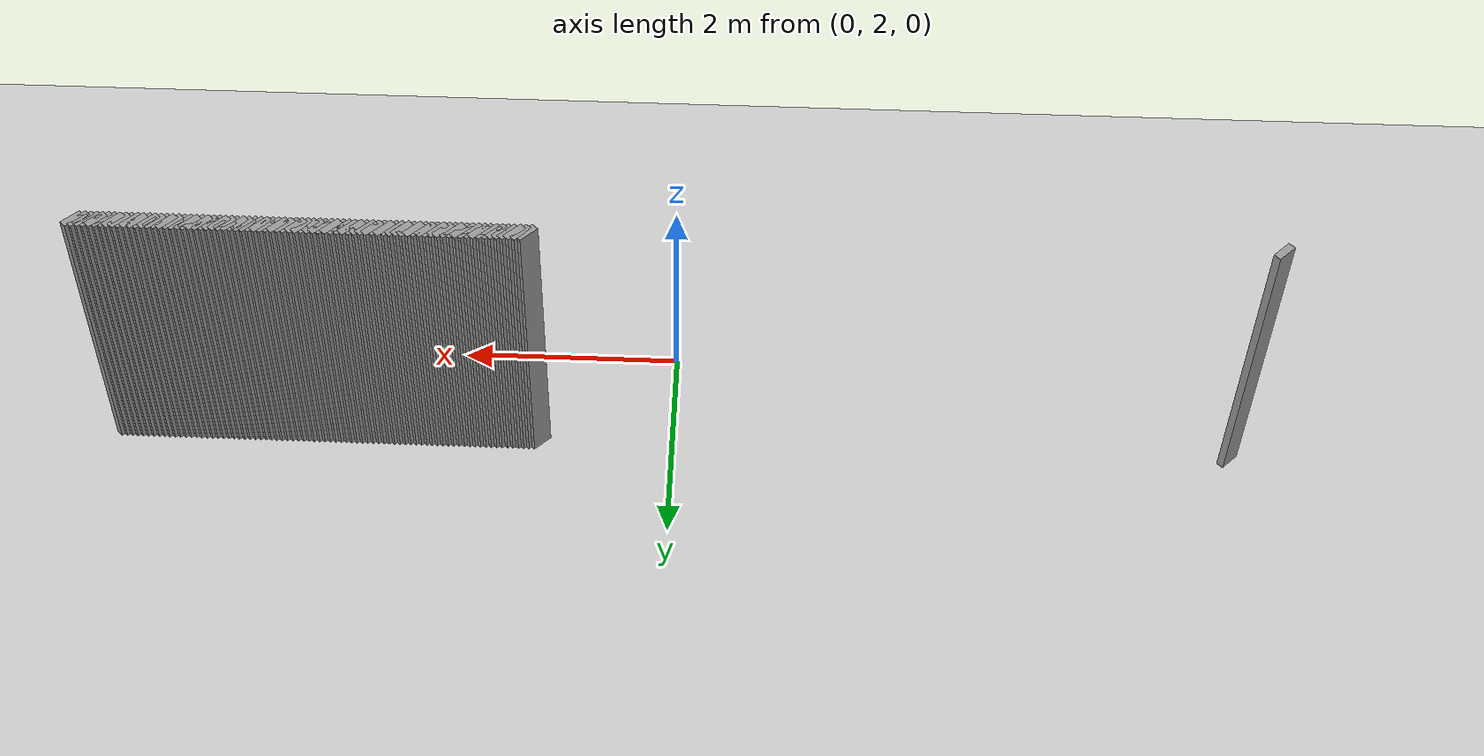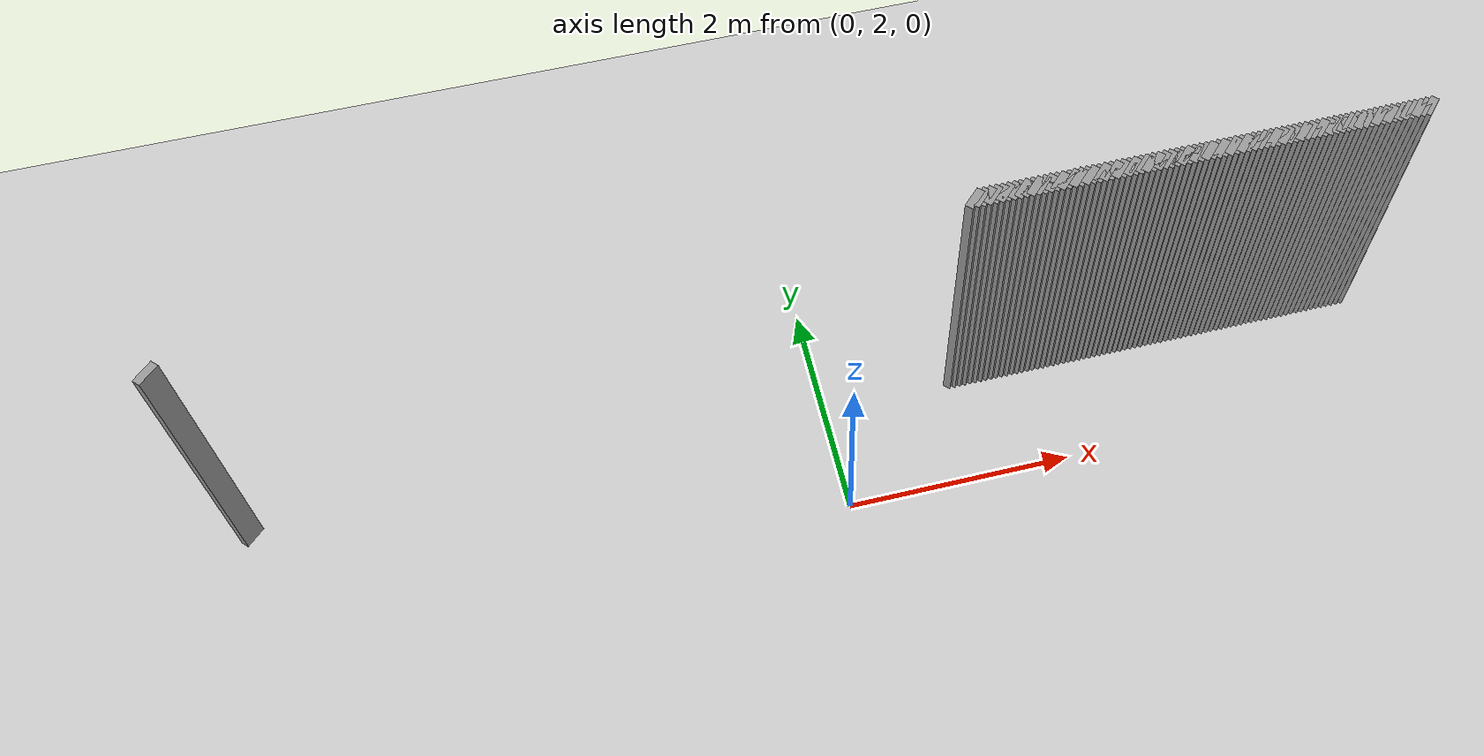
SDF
<sdf version="1.5">
 <world name="default">
  <include><uri>model://ground_plane</uri></include>
  <include><uri>model://sun</uri></include>
  <model name="grey_wall_393">
   <static>1</static>
   <link name="link">
    <pose>1.225 3.025  1.4 0 0 -0.785398163397</pose>
    <collision name="collision"><geometry><box><size>0.0707106781187 .2  2.8</size></box></geometry></collision>
    <visual name="visual">
     <cast_shadows>0</cast_shadows>
     <geometry><box><size>0.0707106781187 .2  2.8</size></box></geometry>
     <material>
      <script>
       <uri>model://grey_wall/materials/scripts</uri>
       <uri>model://grey_wall/materials/textures</uri>
       <name>vrc/grey_wall</name>
      </script>
     </material>
    </visual>
   </link>
  </model>
  <model name="grey_wall_394">
   <static>1</static>
   <link name="link">
    <pose>1.275 3.025  1.4 0 0 -0.785398163397</pose>
    <collision name="collision"><geometry><box><size>0.0707106781187 .2  2.8</size></box></geometry></collision>
    <visual name="visual">
     <cast_shadows>0</cast_shadows>
     <geometry><box><size>0.0707106781187 .2  2.8</size></box></geometry>
     <material>
      <script>
       <uri>model://grey_wall/materials/scripts</uri>
       <uri>model://grey_wall/materials/textures</uri>
       <name>vrc/grey_wall</name>
      </script>
     </material>
    </visual>
   </link>
  </model>
  <model name="grey_wall_395">
   <static>1</static>
   <link name="link">
    <pose>1.325 3.025  1.4 0 0 -0.785398163397</pose>
    <collision name="collision"><geometry><box><size>0.0707106781187 .2  2.8</size></box></geometry></collision>
    <visual name="visual">
     <cast_shadows>0</cast_shadows>
     <geometry><box><size>0.0707106781187 .2  2.8</size></box></geometry>
     <material>
      <script>
       <uri>model://grey_wall/materials/scripts</uri>
       <uri>model://grey_wall/materials/textures</uri>
       <name>vrc/grey_wall</name>
      </script>
     </material>
    </visual>
   </link>
  </model>
  <model name="grey_wall_396">
   <static>1</static>
   <link name="link">
    <pose>1.375 3.025  1.4 0 0 -0.785398163397</pose>
    <collision name="collision"><geometry><box><size>0.0707106781187 .2  2.8</size></box></geometry></collision>
    <visual name="visual">
     <cast_shadows>0</cast_shadows>
     <geometry><box><size>0.0707106781187 .2  2.8</size></box></geometry>
     <material>
      <script>
       <uri>model://grey_wall/materials/scripts</uri>
       <uri>model://grey_wall/materials/textures</uri>
       <name>vrc/grey_wall</name>
      </script>
     </material>
    </visual>
   </link>
  </model>
  <model name="grey_wall_397">
   <static>1</static>
   <link name="link">
    <pose>1.425 3.025  1.4 0 0 -0.785398163397</pose>
    <collision name="collision"><geometry><box><size>0.0707106781187 .2  2.8</size></box></geometry></collision>
    <visual name="visual">
     <cast_shadows>0</cast_shadows>
     <geometry><box><size>0.0707106781187 .2  2.8</size></box></geometry>
     <material>
      <script>
       <uri>model://grey_wall/materials/scripts</uri>
       <uri>model://grey_wall/materials/textures</uri>
       <name>vrc/grey_wall</name>
      </script>
     </material>
    </visual>
   </link>
  </model>
  <model name="grey_wall_398">
   <static>1</static>
   <link name="link">
    <pose>1.475 3.025  1.4 0 0 -0.785398163397</pose>
    <collision name="collision"><geometry><box><size>0.0707106781187 .2  2.8</size></box></geometry></collision>
    <visual name="visual">
     <cast_shadows>0</cast_shadows>
     <geometry><box><size>0.0707106781187 .2  2.8</size></box></geometry>
     <material>
      <script>
       <uri>model://grey_wall/materials/scripts</uri>
       <uri>model://grey_wall/materials/textures</uri>
       <name>vrc/grey_wall</name>
      </script>
     </material>
    </visual>
   </link>
  </model>
  <model name="grey_wall_399">
   <static>1</static>
   <link name="link">
    <pose>1.525 3.025  1.4 0 0 -0.785398163397</pose>
    <collision name="collision"><geometry><box><size>0.0707106781187 .2  2.8</size></box></geometry></collision>
    <visual name="visual">
     <cast_shadows>0</cast_shadows>
     <geometry><box><size>0.0707106781187 .2  2.8</size></box></geometry>
     <material>
      <script>
       <uri>model://grey_wall/materials/scripts</uri>
       <uri>model://grey_wall/materials/textures</uri>
       <name>vrc/grey_wall</name>
      </script>
     </material>
    </visual>
   </link>
  </model>
  <model name="grey_wall_400">
   <static>1</static>
   <link name="link">
    <pose>1.575 3.025  1.4 0 0 -0.785398163397</pose>
    <collision name="collision"><geometry><box><size>0.0707106781187 .2  2.8</size></box></geometry></collision>
    <visual name="visual">
     <cast_shadows>0</cast_shadows>
     <geometry><box><size>0.0707106781187 .2  2.8</size></box></geometry>
     <material>
      <script>
       <uri>model://grey_wall/materials/scripts</uri>
       <uri>model://grey_wall/materials/textures</uri>
       <name>vrc/grey_wall</name>
      </script>
     </material>
    </visual>
   </link>
  </model>
  <model name="grey_wall_401">
   <static>1</static>
   <link name="link">
    <pose>1.625 3.025  1.4 0 0 -0.785398163397</pose>
    <collision name="collision"><geometry><box><size>0.0707106781187 .2  2.8</size></box></geometry></collision>
    <visual name="visual">
     <cast_shadows>0</cast_shadows>
     <geometry><box><size>0.0707106781187 .2  2.8</size></box></geometry>
     <material>
      <script>
       <uri>model://grey_wall/materials/scripts</uri>
       <uri>model://grey_wall/materials/textures</uri>
       <name>vrc/grey_wall</name>
      </script>
     </material>
    </visual>
   </link>
  </model>
  <model name="grey_wall_402">
   <static>1</static>
   <link name="link">
    <pose>1.675 3.025  1.4 0 0 -0.785398163397</pose>
    <collision name="collision"><geometry><box><size>0.0707106781187 .2  2.8</size></box></geometry></collision>
    <visual name="visual">
     <cast_shadows>0</cast_shadows>
     <geometry><box><size>0.0707106781187 .2  2.8</size></box></geometry>
     <material>
      <script>
       <uri>model://grey_wall/materials/scripts</uri>
       <uri>model://grey_wall/materials/textures</uri>
       <name>vrc/grey_wall</name>
      </script>
     </material>
    </visual>
   </link>
  </model>
  <model name="grey_wall_403">
   <static>1</static>
   <link name="link">
    <pose>1.725 3.025  1.4 0 0 -0.785398163397</pose>
    <collision name="collision"><geometry><box><size>0.0707106781187 .2  2.8</size></box></geometry></collision>
    <visual name="visual">
     <cast_shadows>0</cast_shadows>
     <geometry><box><size>0.0707106781187 .2  2.8</size></box></geometry>
     <material>
      <script>
       <uri>model://grey_wall/materials/scripts</uri>
       <uri>model://grey_wall/materials/textures</uri>
       <name>vrc/grey_wall</name>
      </script>
     </material>
    </visual>
   </link>
  </model>
  <model name="grey_wall_404">
   <static>1</static>
   <link name="link">
    <pose>1.775 3.025  1.4 0 0 -0.785398163397</pose>
    <collision name="collision"><geometry><box><size>0.0707106781187 .2  2.8</size></box></geometry></collision>
    <visual name="visual">
     <cast_shadows>0</cast_shadows>
     <geometry><box><size>0.0707106781187 .2  2.8</size></box></geometry>
     <material>
      <script>
       <uri>model://grey_wall/materials/scripts</uri>
       <uri>model://grey_wall/materials/textures</uri>
       <name>vrc/grey_wall</name>
      </script>
     </material>
    </visual>
   </link>
  </model>
  <model name="grey_wall_405">
   <static>1</static>
   <link name="link">
    <pose>1.825 3.025  1.4 0 0 -0.785398163397</pose>
    <collision name="collision"><geometry><box><size>0.0707106781187 .2  2.8</size></box></geometry></collision>
    <visual name="visual">
     <cast_shadows>0</cast_shadows>
     <geometry><box><size>0.0707106781187 .2  2.8</size></box></geometry>
     <material>
      <script>
       <uri>model://grey_wall/materials/scripts</uri>
       <uri>model://grey_wall/materials/textures</uri>
       <name>vrc/grey_wall</name>
      </script>
     </material>
    </visual>
   </link>
  </model>
  <model name="grey_wall_406">
   <static>1</static>
   <link name="link">
    <pose>1.875 3.025  1.4 0 0 -0.785398163397</pose>
    <collision name="collision"><geometry><box><size>0.0707106781187 .2  2.8</size></box></geometry></collision>
    <visual name="visual">
     <cast_shadows>0</cast_shadows>
     <geometry><box><size>0.0707106781187 .2  2.8</size></box></geometry>
     <material>
      <script>
       <uri>model://grey_wall/materials/scripts</uri>
       <uri>model://grey_wall/materials/textures</uri>
       <name>vrc/grey_wall</name>
      </script>
     </material>
    </visual>
   </link>
  </model>
  <model name="grey_wall_407">
   <static>1</static>
   <link name="link">
    <pose>1.925 3.025  1.4 0 0 -0.785398163397</pose>
    <collision name="collision"><geometry><box><size>0.0707106781187 .2  2.8</size></box></geometry></collision>
    <visual name="visual">
     <cast_shadows>0</cast_shadows>
     <geometry><box><size>0.0707106781187 .2  2.8</size></box></geometry>
     <material>
      <script>
       <uri>model://grey_wall/materials/scripts</uri>
       <uri>model://grey_wall/materials/textures</uri>
       <name>vrc/grey_wall</name>
      </script>
     </material>
    </visual>
   </link>
  </model>
  <model name="grey_wall_408">
   <static>1</static>
   <link name="link">
    <pose>1.975 3.025  1.4 0 0 -0.785398163397</pose>
    <collision name="collision"><geometry><box><size>0.0707106781187 .2  2.8</size></box></geometry></collision>
    <visual name="visual">
     <cast_shadows>0</cast_shadows>
     <geometry><box><size>0.0707106781187 .2  2.8</size></box></geometry>
     <material>
      <script>
       <uri>model://grey_wall/materials/scripts</uri>
       <uri>model://grey_wall/materials/textures</uri>
       <name>vrc/grey_wall</name>
      </script>
     </material>
    </visual>
   </link>
  </model>
  <model name="grey_wall_409">
   <static>1</static>
   <link name="link">
    <pose>2.025 3.025  1.4 0 0 -0.785398163397</pose>
    <collision name="collision"><geometry><box><size>0.0707106781187 .2  2.8</size></box></geometry></collision>
    <visual name="visual">
     <cast_shadows>0</cast_shadows>
     <geometry><box><size>0.0707106781187 .2  2.8</size></box></geometry>
     <material>
      <script>
       <uri>model://grey_wall/materials/scripts</uri>
       <uri>model://grey_wall/materials/textures</uri>
       <name>vrc/grey_wall</name>
      </script>
     </material>
    </visual>
   </link>
  </model>
  <model name="grey_wall_410">
   <static>1</static>
   <link name="link">
    <pose>2.075 3.025  1.4 0 0 -0.785398163397</pose>
    <collision name="collision"><geometry><box><size>0.0707106781187 .2  2.8</size></box></geometry></collision>
    <visual name="visual">
     <cast_shadows>0</cast_shadows>
     <geometry><box><size>0.0707106781187 .2  2.8</size></box></geometry>
     <material>
      <script>
       <uri>model://grey_wall/materials/scripts</uri>
       <uri>model://grey_wall/materials/textures</uri>
       <name>vrc/grey_wall</name>
      </script>
     </material>
    </visual>
   </link>
  </model>
  <model name="grey_wall_411">
   <static>1</static>
   <link name="link">
    <pose>2.125 3.025  1.4 0 0 -0.785398163397</pose>
    <collision name="collision"><geometry><box><size>0.0707106781187 .2  2.8</size></box></geometry></collision>
    <visual name="visual">
     <cast_shadows>0</cast_shadows>
     <geometry><box><size>0.0707106781187 .2  2.8</size></box></geometry>
     <material>
      <script>
       <uri>model://grey_wall/materials/scripts</uri>
       <uri>model://grey_wall/materials/textures</uri>
       <name>vrc/grey_wall</name>
      </script>
     </material>
    </visual>
   </link>
  </model>
  <model name="grey_wall_412">
   <static>1</static>
   <link name="link">
    <pose>2.175 3.025  1.4 0 0 -0.785398163397</pose>
    <collision name="collision"><geometry><box><size>0.0707106781187 .2  2.8</size></box></geometry></collision>
    <visual name="visual">
     <cast_shadows>0</cast_shadows>
     <geometry><box><size>0.0707106781187 .2  2.8</size></box></geometry>
     <material>
      <script>
       <uri>model://grey_wall/materials/scripts</uri>
       <uri>model://grey_wall/materials/textures</uri>
       <name>vrc/grey_wall</name>
      </script>
     </material>
    </visual>
   </link>
  </model>
  <model name="grey_wall_413">
   <static>1</static>
   <link name="link">
    <pose>2.225 3.025  1.4 0 0 -0.785398163397</pose>
    <collision name="collision"><geometry><box><size>0.0707106781187 .2  2.8</size></box></geometry></collision>
    <visual name="visual">
     <cast_shadows>0</cast_shadows>
     <geometry><box><size>0.0707106781187 .2  2.8</size></box></geometry>
     <material>
      <script>
       <uri>model://grey_wall/materials/scripts</uri>
       <uri>model://grey_wall/materials/textures</uri>
       <name>vrc/grey_wall</name>
      </script>
     </material>
    </visual>
   </link>
  </model>
  <model name="grey_wall_414">
   <static>1</static>
   <link name="link">
    <pose>2.275 3.025  1.4 0 0 -0.785398163397</pose>
    <collision name="collision"><geometry><box><size>0.0707106781187 .2  2.8</size></box></geometry></collision>
    <visual name="visual">
     <cast_shadows>0</cast_shadows>
     <geometry><box><size>0.0707106781187 .2  2.8</size></box></geometry>
     <material>
      <script>
       <uri>model://grey_wall/materials/scripts</uri>
       <uri>model://grey_wall/materials/textures</uri>
       <name>vrc/grey_wall</name>
      </script>
     </material>
    </visual>
   </link>
  </model>
  <model name="grey_wall_415">
   <static>1</static>
   <link name="link">
    <pose>2.325 3.025  1.4 0 0 -0.785398163397</pose>
    <collision name="collision"><geometry><box><size>0.0707106781187 .2  2.8</size></box></geometry></collision>
    <visual name="visual">
     <cast_shadows>0</cast_shadows>
     <geometry><box><size>0.0707106781187 .2  2.8</size></box></geometry>
     <material>
      <script>
       <uri>model://grey_wall/materials/scripts</uri>
       <uri>model://grey_wall/materials/textures</uri>
       <name>vrc/grey_wall</name>
      </script>
     </material>
    </visual>
   </link>
  </model>
  <model name="grey_wall_416">
   <static>1</static>
   <link name="link">
    <pose>2.375 3.025  1.4 0 0 -0.785398163397</pose>
    <collision name="collision"><geometry><box><size>0.0707106781187 .2  2.8</size></box></geometry></collision>
    <visual name="visual">
     <cast_shadows>0</cast_shadows>
     <geometry><box><size>0.0707106781187 .2  2.8</size></box></geometry>
     <material>
      <script>
       <uri>model://grey_wall/materials/scripts</uri>
       <uri>model://grey_wall/materials/textures</uri>
       <name>vrc/grey_wall</name>
      </script>
     </material>
    </visual>
   </link>
  </model>
  <model name="grey_wall_417">
   <static>1</static>
   <link name="link">
    <pose>2.425 3.025  1.4 0 0 -0.785398163397</pose>
    <collision name="collision"><geometry><box><size>0.0707106781187 .2  2.8</size></box></geometry></collision>
    <visual name="visual">
     <cast_shadows>0</cast_shadows>
     <geometry><box><size>0.0707106781187 .2  2.8</size></box></geometry>
     <material>
      <script>
       <uri>model://grey_wall/materials/scripts</uri>
       <uri>model://grey_wall/materials/textures</uri>
       <name>vrc/grey_wall</name>
      </script>
     </material>
    </visual>
   </link>
  </model>
  <model name="grey_wall_418">
   <static>1</static>
   <link name="link">
    <pose>2.475 3.025  1.4 0 0 -0.785398163397</pose>
    <collision name="collision"><geometry><box><size>0.0707106781187 .2  2.8</size></box></geometry></collision>
    <visual name="visual">
     <cast_shadows>0</cast_shadows>
     <geometry><box><size>0.0707106781187 .2  2.8</size></box></geometry>
     <material>
      <script>
       <uri>model://grey_wall/materials/scripts</uri>
       <uri>model://grey_wall/materials/textures</uri>
       <name>vrc/grey_wall</name>
      </script>
     </material>
    </visual>
   </link>
  </model>
  <model name="grey_wall_419">
   <static>1</static>
   <link name="link">
    <pose>2.525 3.025  1.4 0 0 -0.785398163397</pose>
    <collision name="collision"><geometry><box><size>0.0707106781187 .2  2.8</size></box></geometry></collision>
    <visual name="visual">
     <cast_shadows>0</cast_shadows>
     <geometry><box><size>0.0707106781187 .2  2.8</size></box></geometry>
     <material>
      <script>
       <uri>model://grey_wall/materials/scripts</uri>
       <uri>model://grey_wall/materials/textures</uri>
       <name>vrc/grey_wall</name>
      </script>
     </material>
    </visual>
   </link>
  </model>
  <model name="grey_wall_420">
   <static>1</static>
   <link name="link">
    <pose>2.575 3.025  1.4 0 0 -0.785398163397</pose>
    <collision name="collision"><geometry><box><size>0.0707106781187 .2  2.8</size></box></geometry></collision>
    <visual name="visual">
     <cast_shadows>0</cast_shadows>
     <geometry><box><size>0.0707106781187 .2  2.8</size></box></geometry>
     <material>
      <script>
       <uri>model://grey_wall/materials/scripts</uri>
       <uri>model://grey_wall/materials/textures</uri>
       <name>vrc/grey_wall</name>
      </script>
     </material>
    </visual>
   </link>
  </model>
  <model name="grey_wall_421">
   <static>1</static>
   <link name="link">
    <pose>2.625 3.025  1.4 0 0 -0.785398163397</pose>
    <collision name="collision"><geometry><box><size>0.0707106781187 .2  2.8</size></box></geometry></collision>
    <visual name="visual">
     <cast_shadows>0</cast_shadows>
     <geometry><box><size>0.0707106781187 .2  2.8</size></box></geometry>
     <material>
      <script>
       <uri>model://grey_wall/materials/scripts</uri>
       <uri>model://grey_wall/materials/textures</uri>
       <name>vrc/grey_wall</name>
      </script>
     </material>
    </visual>
   </link>
  </model>
  <model name="grey_wall_422">
   <static>1</static>
   <link name="link">
    <pose>2.675 3.025  1.4 0 0 -0.785398163397</pose>
    <collision name="collision"><geometry><box><size>0.0707106781187 .2  2.8</size></box></geometry></collision>
    <visual name="visual">
     <cast_shadows>0</cast_shadows>
     <geometry><box><size>0.0707106781187 .2  2.8</size></box></geometry>
     <material>
      <script>
       <uri>model://grey_wall/materials/scripts</uri>
       <uri>model://grey_wall/materials/textures</uri>
       <name>vrc/grey_wall</name>
      </script>
     </material>
    </visual>
   </link>
  </model>
  <model name="grey_wall_423">
   <static>1</static>
   <link name="link">
    <pose>2.725 3.025  1.4 0 0 -0.785398163397</pose>
    <collision name="collision"><geometry><box><size>0.0707106781187 .2  2.8</size></box></geometry></collision>
    <visual name="visual">
     <cast_shadows>0</cast_shadows>
     <geometry><box><size>0.0707106781187 .2  2.8</size></box></geometry>
     <material>
      <script>
       <uri>model://grey_wall/materials/scripts</uri>
       <uri>model://grey_wall/materials/textures</uri>
       <name>vrc/grey_wall</name>
      </script>
     </material>
    </visual>
   </link>
  </model>
  <model name="grey_wall_424">
   <static>1</static>
   <link name="link">
    <pose>2.775 3.025  1.4 0 0 -0.785398163397</pose>
    <collision name="collision"><geometry><box><size>0.0707106781187 .2  2.8</size></box></geometry></collision>
    <visual name="visual">
     <cast_shadows>0</cast_shadows>
     <geometry><box><size>0.0707106781187 .2  2.8</size></box></geometry>
     <material>
      <script>
       <uri>model://grey_wall/materials/scripts</uri>
       <uri>model://grey_wall/materials/textures</uri>
       <name>vrc/grey_wall</name>
      </script>
     </material>
    </visual>
   </link>
  </model>
  <model name="grey_wall_425">
   <static>1</static>
   <link name="link">
    <pose>2.825 3.025  1.4 0 0 -0.785398163397</pose>
    <collision name="collision"><geometry><box><size>0.0707106781187 .2  2.8</size></box></geometry></collision>
    <visual name="visual">
     <cast_shadows>0</cast_shadows>
     <geometry><box><size>0.0707106781187 .2  2.8</size></box></geometry>
     <material>
      <script>
       <uri>model://grey_wall/materials/scripts</uri>
       <uri>model://grey_wall/materials/textures</uri>
       <name>vrc/grey_wall</name>
      </script>
     </material>
    </visual>
   </link>
  </model>
  <model name="grey_wall_426">
   <static>1</static>
   <link name="link">
    <pose>2.875 3.025  1.4 0 0 -0.785398163397</pose>
    <collision name="collision"><geometry><box><size>0.0707106781187 .2  2.8</size></box></geometry></collision>
    <visual name="visual">
     <cast_shadows>0</cast_shadows>
     <geometry><box><size>0.0707106781187 .2  2.8</size></box></geometry>
     <material>
      <script>
       <uri>model://grey_wall/materials/scripts</uri>
       <uri>model://grey_wall/materials/textures</uri>
       <name>vrc/grey_wall</name>
      </script>
     </material>
    </visual>
   </link>
  </model>
  <model name="grey_wall_427">
   <static>1</static>
   <link name="link">
    <pose>2.925 3.025  1.4 0 0 -0.785398163397</pose>
    <collision name="collision"><geometry><box><size>0.0707106781187 .2  2.8</size></box></geometry></collision>
    <visual name="visual">
     <cast_shadows>0</cast_shadows>
     <geometry><box><size>0.0707106781187 .2  2.8</size></box></geometry>
     <material>
      <script>
       <uri>model://grey_wall/materials/scripts</uri>
       <uri>model://grey_wall/materials/textures</uri>
       <name>vrc/grey_wall</name>
      </script>
     </material>
    </visual>
   </link>
  </model>
  <model name="grey_wall_428">
   <static>1</static>
   <link name="link">
    <pose>2.975 3.025  1.4 0 0 -0.785398163397</pose>
    <collision name="collision"><geometry><box><size>0.0707106781187 .2  2.8</size></box></geometry></collision>
    <visual name="visual">
     <cast_shadows>0</cast_shadows>
     <geometry><box><size>0.0707106781187 .2  2.8</size></box></geometry>
     <material>
      <script>
       <uri>model://grey_wall/materials/scripts</uri>
       <uri>model://grey_wall/materials/textures</uri>
       <name>vrc/grey_wall</name>
      </script>
     </material>
    </visual>
   </link>
  </model>
  <model name="grey_wall_429">
   <static>1</static>
   <link name="link">
    <pose>3.025 3.025  1.4 0 0 -0.785398163397</pose>
    <collision name="collision"><geometry><box><size>0.0707106781187 .2  2.8</size></box></geometry></collision>
    <visual name="visual">
     <cast_shadows>0</cast_shadows>
     <geometry><box><size>0.0707106781187 .2  2.8</size></box></geometry>
     <material>
      <script>
       <uri>model://grey_wall/materials/scripts</uri>
       <uri>model://grey_wall/materials/textures</uri>
       <name>vrc/grey_wall</name>
      </script>
     </material>
    </visual>
   </link>
  </model>
  <model name="grey_wall_430">
   <static>1</static>
   <link name="link">
    <pose>3.075 3.025  1.4 0 0 -0.785398163397</pose>
    <collision name="collision"><geometry><box><size>0.0707106781187 .2  2.8</size></box></geometry></collision>
    <visual name="visual">
     <cast_shadows>0</cast_shadows>
     <geometry><box><size>0.0707106781187 .2  2.8</size></box></geometry>
     <material>
      <script>
       <uri>model://grey_wall/materials/scripts</uri>
       <uri>model://grey_wall/materials/textures</uri>
       <name>vrc/grey_wall</name>
      </script>
     </material>
    </visual>
   </link>
  </model>
  <model name="grey_wall_431">
   <static>1</static>
   <link name="link">
    <pose>3.125 3.025  1.4 0 0 -0.785398163397</pose>
    <collision name="collision"><geometry><box><size>0.0707106781187 .2  2.8</size></box></geometry></collision>
    <visual name="visual">
     <cast_shadows>0</cast_shadows>
     <geometry><box><size>0.0707106781187 .2  2.8</size></box></geometry>
     <material>
      <script>
       <uri>model://grey_wall/materials/scripts</uri>
       <uri>model://grey_wall/materials/textures</uri>
       <name>vrc/grey_wall</name>
      </script>
     </material>
    </visual>
   </link>
  </model>
  <model name="grey_wall_432">
   <static>1</static>
   <link name="link">
    <pose>3.175 3.025  1.4 0 0 -0.785398163397</pose>
    <collision name="collision"><geometry><box><size>0.0707106781187 .2  2.8</size></box></geometry></collision>
    <visual name="visual">
     <cast_shadows>0</cast_shadows>
     <geometry><box><size>0.0707106781187 .2  2.8</size></box></geometry>
     <material>
      <script>
       <uri>model://grey_wall/materials/scripts</uri>
       <uri>model://grey_wall/materials/textures</uri>
       <name>vrc/grey_wall</name>
      </script>
     </material>
    </visual>
   </link>
  </model>
  <model name="grey_wall_433">
   <static>1</static>
   <link name="link">
    <pose>3.225 3.025  1.4 0 0 -0.785398163397</pose>
    <collision name="collision"><geometry><box><size>0.0707106781187 .2  2.8</size></box></geometry></collision>
    <visual name="visual">
     <cast_shadows>0</cast_shadows>
     <geometry><box><size>0.0707106781187 .2  2.8</size></box></geometry>
     <material>
      <script>
       <uri>model://grey_wall/materials/scripts</uri>
       <uri>model://grey_wall/materials/textures</uri>
       <name>vrc/grey_wall</name>
      </script>
     </material>
    </visual>
   </link>
  </model>
  <model name="grey_wall_434">
   <static>1</static>
   <link name="link">
    <pose>3.275 3.025  1.4 0 0 -0.785398163397</pose>
    <collision name="collision"><geometry><box><size>0.0707106781187 .2  2.8</size></box></geometry></collision>
    <visual name="visual">
     <cast_shadows>0</cast_shadows>
     <geometry><box><size>0.0707106781187 .2  2.8</size></box></geometry>
     <material>
      <script>
       <uri>model://grey_wall/materials/scripts</uri>
       <uri>model://grey_wall/materials/textures</uri>
       <name>vrc/grey_wall</name>
      </script>
     </material>
    </visual>
   </link>
  </model>
  <model name="grey_wall_435">
   <static>1</static>
   <link name="link">
    <pose>3.325 3.025  1.4 0 0 -0.785398163397</pose>
    <collision name="collision"><geometry><box><size>0.0707106781187 .2  2.8</size></box></geometry></collision>
    <visual name="visual">
     <cast_shadows>0</cast_shadows>
     <geometry><box><size>0.0707106781187 .2  2.8</size></box></geometry>
     <material>
      <script>
       <uri>model://grey_wall/materials/scripts</uri>
       <uri>model://grey_wall/materials/textures</uri>
       <name>vrc/grey_wall</name>
      </script>
     </material>
    </visual>
   </link>
  </model>
  <model name="grey_wall_436">
   <static>1</static>
   <link name="link">
    <pose>3.375 3.025  1.4 0 0 -0.785398163397</pose>
    <collision name="collision"><geometry><box><size>0.0707106781187 .2  2.8</size></box></geometry></collision>
    <visual name="visual">
     <cast_shadows>0</cast_shadows>
     <geometry><box><size>0.0707106781187 .2  2.8</size></box></geometry>
     <material>
      <script>
       <uri>model://grey_wall/materials/scripts</uri>
       <uri>model://grey_wall/materials/textures</uri>
       <name>vrc/grey_wall</name>
      </script>
     </material>
    </visual>
   </link>
  </model>
  <model name="grey_wall_437">
   <static>1</static>
   <link name="link">
    <pose>3.425 3.025  1.4 0 0 -0.785398163397</pose>
    <collision name="collision"><geometry><box><size>0.0707106781187 .2  2.8</size></box></geometry></collision>
    <visual name="visual">
     <cast_shadows>0</cast_shadows>
     <geometry><box><size>0.0707106781187 .2  2.8</size></box></geometry>
     <material>
      <script>
       <uri>model://grey_wall/materials/scripts</uri>
       <uri>model://grey_wall/materials/textures</uri>
       <name>vrc/grey_wall</name>
      </script>
     </material>
    </visual>
   </link>
  </model>
  <model name="grey_wall_438">
   <static>1</static>
   <link name="link">
    <pose>3.475 3.025  1.4 0 0 -0.785398163397</pose>
    <collision name="collision"><geometry><box><size>0.0707106781187 .2  2.8</size></box></geometry></collision>
    <visual name="visual">
     <cast_shadows>0</cast_shadows>
     <geometry><box><size>0.0707106781187 .2  2.8</size></box></geometry>
     <material>
      <script>
       <uri>model://grey_wall/materials/scripts</uri>
       <uri>model://grey_wall/materials/textures</uri>
       <name>vrc/grey_wall</name>
      </script>
     </material>
    </visual>
   </link>
  </model>
  <model name="grey_wall_439">
   <static>1</static>
   <link name="link">
    <pose>3.525 3.025  1.4 0 0 -0.785398163397</pose>
    <collision name="collision"><geometry><box><size>0.0707106781187 .2  2.8</size></box></geometry></collision>
    <visual name="visual">
     <cast_shadows>0</cast_shadows>
     <geometry><box><size>0.0707106781187 .2  2.8</size></box></geometry>
     <material>
      <script>
       <uri>model://grey_wall/materials/scripts</uri>
       <uri>model://grey_wall/materials/textures</uri>
       <name>vrc/grey_wall</name>
      </script>
     </material>
    </visual>
   </link>
  </model>
  <model name="grey_wall_440">
   <static>1</static>
   <link name="link">
    <pose>3.575 3.025  1.4 0 0 -0.785398163397</pose>
    <collision name="collision"><geometry><box><size>0.0707106781187 .2  2.8</size></box></geometry></collision>
    <visual name="visual">
     <cast_shadows>0</cast_shadows>
     <geometry><box><size>0.0707106781187 .2  2.8</size></box></geometry>
     <material>
      <script>
       <uri>model://grey_wall/materials/scripts</uri>
       <uri>model://grey_wall/materials/textures</uri>
       <name>vrc/grey_wall</name>
      </script>
     </material>
    </visual>
   </link>
  </model>
  <model name="grey_wall_441">
   <static>1</static>
   <link name="link">
    <pose>3.625 3.025  1.4 0 0 -0.785398163397</pose>
    <collision name="collision"><geometry><box><size>0.0707106781187 .2  2.8</size></box></geometry></collision>
    <visual name="visual">
     <cast_shadows>0</cast_shadows>
     <geometry><box><size>0.0707106781187 .2  2.8</size></box></geometry>
     <material>
      <script>
       <uri>model://grey_wall/materials/scripts</uri>
       <uri>model://grey_wall/materials/textures</uri>
       <name>vrc/grey_wall</name>
      </script>
     </material>
    </visual>
   </link>
  </model>
  <model name="grey_wall_442">
   <static>1</static>
   <link name="link">
    <pose>3.675 3.025  1.4 0 0 -0.785398163397</pose>
    <collision name="collision"><geometry><box><size>0.0707106781187 .2  2.8</size></box></geometry></collision>
    <visual name="visual">
     <cast_shadows>0</cast_shadows>
     <geometry><box><size>0.0707106781187 .2  2.8</size></box></geometry>
     <material>
      <script>
       <uri>model://grey_wall/materials/scripts</uri>
       <uri>model://grey_wall/materials/textures</uri>
       <name>vrc/grey_wall</name>
      </script>
     </material>
    </visual>
   </link>
  </model>
  <model name="grey_wall_443">
   <static>1</static>
   <link name="link">
    <pose>3.725 3.025  1.4 0 0 -0.785398163397</pose>
    <collision name="collision"><geometry><box><size>0.0707106781187 .2  2.8</size></box></geometry></collision>
    <visual name="visual">
     <cast_shadows>0</cast_shadows>
     <geometry><box><size>0.0707106781187 .2  2.8</size></box></geometry>
     <material>
      <script>
       <uri>model://grey_wall/materials/scripts</uri>
       <uri>model://grey_wall/materials/textures</uri>
       <name>vrc/grey_wall</name>
      </script>
     </material>
    </visual>
   </link>
  </model>
  <model name="grey_wall_444">
   <static>1</static>
   <link name="link">
    <pose>3.775 3.025  1.4 0 0 -0.785398163397</pose>
    <collision name="collision"><geometry><box><size>0.0707106781187 .2  2.8</size></box></geometry></collision>
    <visual name="visual">
     <cast_shadows>0</cast_shadows>
     <geometry><box><size>0.0707106781187 .2  2.8</size></box></geometry>
     <material>
      <script>
       <uri>model://grey_wall/materials/scripts</uri>
       <uri>model://grey_wall/materials/textures</uri>
       <name>vrc/grey_wall</name>
      </script>
     </material>
    </visual>
   </link>
  </model>
  <model name="grey_wall_445">
   <static>1</static>
   <link name="link">
    <pose>3.825 3.025  1.4 0 0 -0.785398163397</pose>
    <collision name="collision"><geometry><box><size>0.0707106781187 .2  2.8</size></box></geometry></collision>
    <visual name="visual">
     <cast_shadows>0</cast_shadows>
     <geometry><box><size>0.0707106781187 .2  2.8</size></box></geometry>
     <material>
      <script>
       <uri>model://grey_wall/materials/scripts</uri>
       <uri>model://grey_wall/materials/textures</uri>
       <name>vrc/grey_wall</name>
      </script>
     </material>
    </visual>
   </link>
  </model>
  <model name="grey_wall_446">
   <static>1</static>
   <link name="link">
    <pose>3.875 3.025  1.4 0 0 -0.785398163397</pose>
    <collision name="collision"><geometry><box><size>0.0707106781187 .2  2.8</size></box></geometry></collision>
    <visual name="visual">
     <cast_shadows>0</cast_shadows>
     <geometry><box><size>0.0707106781187 .2  2.8</size></box></geometry>
     <material>
      <script>
       <uri>model://grey_wall/materials/scripts</uri>
       <uri>model://grey_wall/materials/textures</uri>
       <name>vrc/grey_wall</name>
      </script>
     </material>
    </visual>
   </link>
  </model>
  <model name="grey_wall_447">
   <static>1</static>
   <link name="link">
    <pose>3.925 3.025  1.4 0 0 -0.785398163397</pose>
    <collision name="collision"><geometry><box><size>0.0707106781187 .2  2.8</size></box></geometry></collision>
    <visual name="visual">
     <cast_shadows>0</cast_shadows>
     <geometry><box><size>0.0707106781187 .2  2.8</size></box></geometry>
     <material>
      <script>
       <uri>model://grey_wall/materials/scripts</uri>
       <uri>model://grey_wall/materials/textures</uri>
       <name>vrc/grey_wall</name>
      </script>
     </material>
    </visual>
   </link>
  </model>
  <model name="grey_wall_448">
   <static>1</static>
   <link name="link">
    <pose>3.975 3.025  1.4 0 0 -0.785398163397</pose>
    <collision name="collision"><geometry><box><size>0.0707106781187 .2  2.8</size></box></geometry></collision>
    <visual name="visual">
     <cast_shadows>0</cast_shadows>
     <geometry><box><size>0.0707106781187 .2  2.8</size></box></geometry>
     <material>
      <script>
       <uri>model://grey_wall/materials/scripts</uri>
       <uri>model://grey_wall/materials/textures</uri>
       <name>vrc/grey_wall</name>
      </script>
     </material>
    </visual>
   </link>
  </model>
  <model name="grey_wall_449">
   <static>1</static>
   <link name="link">
    <pose>4.025 3.025  1.4 0 0 -0.785398163397</pose>
    <collision name="collision"><geometry><box><size>0.0707106781187 .2  2.8</size></box></geometry></collision>
    <visual name="visual">
     <cast_shadows>0</cast_shadows>
     <geometry><box><size>0.0707106781187 .2  2.8</size></box></geometry>
     <material>
      <script>
       <uri>model://grey_wall/materials/scripts</uri>
       <uri>model://grey_wall/materials/textures</uri>
       <name>vrc/grey_wall</name>
      </script>
     </material>
    </visual>
   </link>
  </model>
  <model name="grey_wall_450">
   <static>1</static>
   <link name="link">
    <pose>4.075 3.025  1.4 0 0 -0.785398163397</pose>
    <collision name="collision"><geometry><box><size>0.0707106781187 .2  2.8</size></box></geometry></collision>
    <visual name="visual">
     <cast_shadows>0</cast_shadows>
     <geometry><box><size>0.0707106781187 .2  2.8</size></box></geometry>
     <material>
      <script>
       <uri>model://grey_wall/materials/scripts</uri>
       <uri>model://grey_wall/materials/textures</uri>
       <name>vrc/grey_wall</name>
      </script>
     </material>
    </visual>
   </link>
  </model>
  <model name="grey_wall_451">
   <static>1</static>
   <link name="link">
    <pose>4.125 3.025  1.4 0 0 -0.785398163397</pose>
    <collision name="collision"><geometry><box><size>0.0707106781187 .2  2.8</size></box></geometry></collision>
    <visual name="visual">
     <cast_shadows>0</cast_shadows>
     <geometry><box><size>0.0707106781187 .2  2.8</size></box></geometry>
     <material>
      <script>
       <uri>model://grey_wall/materials/scripts</uri>
       <uri>model://grey_wall/materials/textures</uri>
       <name>vrc/grey_wall</name>
      </script>
     </material>
    </visual>
   </link>
  </model>
  <model name="grey_wall_452">
   <static>1</static>
   <link name="link">
    <pose>4.175 3.025  1.4 0 0 -0.785398163397</pose>
    <collision name="collision"><geometry><box><size>0.0707106781187 .2  2.8</size></box></geometry></collision>
    <visual name="visual">
     <cast_shadows>0</cast_shadows>
     <geometry><box><size>0.0707106781187 .2  2.8</size></box></geometry>
     <material>
      <script>
       <uri>model://grey_wall/materials/scripts</uri>
       <uri>model://grey_wall/materials/textures</uri>
       <name>vrc/grey_wall</name>
      </script>
     </material>
    </visual>
   </link>
  </model>
  <model name="grey_wall_453">
   <static>1</static>
   <link name="link">
    <pose>4.225 3.025  1.4 0 0 -0.785398163397</pose>
    <collision name="collision"><geometry><box><size>0.0707106781187 .2  2.8</size></box></geometry></collision>
    <visual name="visual">
     <cast_shadows>0</cast_shadows>
     <geometry><box><size>0.0707106781187 .2  2.8</size></box></geometry>
     <material>
      <script>
       <uri>model://grey_wall/materials/scripts</uri>
       <uri>model://grey_wall/materials/textures</uri>
       <name>vrc/grey_wall</name>
      </script>
     </material>
    </visual>
   </link>
  </model>
  <model name="grey_wall_454">
   <static>1</static>
   <link name="link">
    <pose>4.275 3.025  1.4 0 0 -0.785398163397</pose>
    <collision name="collision"><geometry><box><size>0.0707106781187 .2  2.8</size></box></geometry></collision>
    <visual name="visual">
     <cast_shadows>0</cast_shadows>
     <geometry><box><size>0.0707106781187 .2  2.8</size></box></geometry>
     <material>
      <script>
       <uri>model://grey_wall/materials/scripts</uri>
       <uri>model://grey_wall/materials/textures</uri>
       <name>vrc/grey_wall</name>
      </script>
     </material>
    </visual>
   </link>
  </model>
  <model name="grey_wall_455">
   <static>1</static>
   <link name="link">
    <pose>4.325 3.025  1.4 0 0 -0.785398163397</pose>
    <collision name="collision"><geometry><box><size>0.0707106781187 .2  2.8</size></box></geometry></collision>
    <visual name="visual">
     <cast_shadows>0</cast_shadows>
     <geometry><box><size>0.0707106781187 .2  2.8</size></box></geometry>
     <material>
      <script>
       <uri>model://grey_wall/materials/scripts</uri>
       <uri>model://grey_wall/materials/textures</uri>
       <name>vrc/grey_wall</name>
      </script>
     </material>
    </visual>
   </link>
  </model>
  <model name="grey_wall_456">
   <static>1</static>
   <link name="link">
    <pose>4.375 3.025  1.4 0 0 -0.785398163397</pose>
    <collision name="collision"><geometry><box><size>0.0707106781187 .2  2.8</size></box></geometry></collision>
    <visual name="visual">
     <cast_shadows>0</cast_shadows>
     <geometry><box><size>0.0707106781187 .2  2.8</size></box></geometry>
     <material>
      <script>
       <uri>model://grey_wall/materials/scripts</uri>
       <uri>model://grey_wall/materials/textures</uri>
       <name>vrc/grey_wall</name>
      </script>
     </material>
    </visual>
   </link>
  </model>
  <model name="grey_wall_457">
   <static>1</static>
   <link name="link">
    <pose>4.425 3.025  1.4 0 0 -0.785398163397</pose>
    <collision name="collision"><geometry><box><size>0.0707106781187 .2  2.8</size></box></geometry></collision>
    <visual name="visual">
     <cast_shadows>0</cast_shadows>
     <geometry><box><size>0.0707106781187 .2  2.8</size></box></geometry>
     <material>
      <script>
       <uri>model://grey_wall/materials/scripts</uri>
       <uri>model://grey_wall/materials/textures</uri>
       <name>vrc/grey_wall</name>
      </script>
     </material>
    </visual>
   </link>
  </model>
  <model name="grey_wall_458">
   <static>1</static>
   <link name="link">
    <pose>4.475 3.025  1.4 0 0 -0.785398163397</pose>
    <collision name="collision"><geometry><box><size>0.0707106781187 .2  2.8</size></box></geometry></collision>
    <visual name="visual">
     <cast_shadows>0</cast_shadows>
     <geometry><box><size>0.0707106781187 .2  2.8</size></box></geometry>
     <material>
      <script>
       <uri>model://grey_wall/materials/scripts</uri>
       <uri>model://grey_wall/materials/textures</uri>
       <name>vrc/grey_wall</name>
      </script>
     </material>
    </visual>
   </link>
  </model>
  <model name="grey_wall_459">
   <static>1</static>
   <link name="link">
    <pose>4.525 3.025  1.4 0 0 -0.785398163397</pose>
    <collision name="collision"><geometry><box><size>0.0707106781187 .2  2.8</size></box></geometry></collision>
    <visual name="visual">
     <cast_shadows>0</cast_shadows>
     <geometry><box><size>0.0707106781187 .2  2.8</size></box></geometry>
     <material>
      <script>
       <uri>model://grey_wall/materials/scripts</uri>
       <uri>model://grey_wall/materials/textures</uri>
       <name>vrc/grey_wall</name>
      </script>
     </material>
    </visual>
   </link>
  </model>
  <model name="grey_wall_460">
   <static>1</static>
   <link name="link">
    <pose>4.575 3.025  1.4 0 0 -0.785398163397</pose>
    <collision name="collision"><geometry><box><size>0.0707106781187 .2  2.8</size></box></geometry></collision>
    <visual name="visual">
     <cast_shadows>0</cast_shadows>
     <geometry><box><size>0.0707106781187 .2  2.8</size></box></geometry>
     <material>
      <script>
       <uri>model://grey_wall/materials/scripts</uri>
       <uri>model://grey_wall/materials/textures</uri>
       <name>vrc/grey_wall</name>
      </script>
     </material>
    </visual>
   </link>
  </model>
  <model name="grey_wall_461">
   <static>1</static>
   <link name="link">
    <pose>4.625 3.025  1.4 0 0 -0.785398163397</pose>
    <collision name="collision"><geometry><box><size>0.0707106781187 .2  2.8</size></box></geometry></collision>
    <visual name="visual">
     <cast_shadows>0</cast_shadows>
     <geometry><box><size>0.0707106781187 .2  2.8</size></box></geometry>
     <material>
      <script>
       <uri>model://grey_wall/materials/scripts</uri>
       <uri>model://grey_wall/materials/textures</uri>
       <name>vrc/grey_wall</name>
      </script>
     </material>
    </visual>
   </link>
  </model>
  <model name="grey_wall_462">
   <static>1</static>
   <link name="link">
    <pose>4.675 3.025  1.4 0 0 -0.785398163397</pose>
    <collision name="collision"><geometry><box><size>0.0707106781187 .2  2.8</size></box></geometry></collision>
    <visual name="visual">
     <cast_shadows>0</cast_shadows>
     <geometry><box><size>0.0707106781187 .2  2.8</size></box></geometry>
     <material>
      <script>
       <uri>model://grey_wall/materials/scripts</uri>
       <uri>model://grey_wall/materials/textures</uri>
       <name>vrc/grey_wall</name>
      </script>
     </material>
    </visual>
   </link>
  </model>
  <model name="grey_wall_463">
   <static>1</static>
   <link name="link">
    <pose>4.725 3.025  1.4 0 0 -0.785398163397</pose>
    <collision name="collision"><geometry><box><size>0.0707106781187 .2  2.8</size></box></geometry></collision>
    <visual name="visual">
     <cast_shadows>0</cast_shadows>
     <geometry><box><size>0.0707106781187 .2  2.8</size></box></geometry>
     <material>
      <script>
       <uri>model://grey_wall/materials/scripts</uri>
       <uri>model://grey_wall/materials/textures</uri>
       <name>vrc/grey_wall</name>
      </script>
     </material>
    </visual>
   </link>
  </model>
  <model name="grey_wall_464">
   <static>1</static>
   <link name="link">
    <pose>4.775 3.025  1.4 0 0 -0.785398163397</pose>
    <collision name="collision"><geometry><box><size>0.0707106781187 .2  2.8</size></box></geometry></collision>
    <visual name="visual">
     <cast_shadows>0</cast_shadows>
     <geometry><box><size>0.0707106781187 .2  2.8</size></box></geometry>
     <material>
      <script>
       <uri>model://grey_wall/materials/scripts</uri>
       <uri>model://grey_wall/materials/textures</uri>
       <name>vrc/grey_wall</name>
      </script>
     </material>
    </visual>
   </link>
  </model>
  <model name="grey_wall_465">
   <static>1</static>
   <link name="link">
    <pose>4.825 3.025  1.4 0 0 -0.785398163397</pose>
    <collision name="collision"><geometry><box><size>0.0707106781187 .2  2.8</size></box></geometry></collision>
    <visual name="visual">
     <cast_shadows>0</cast_shadows>
     <geometry><box><size>0.0707106781187 .2  2.8</size></box></geometry>
     <material>
      <script>
       <uri>model://grey_wall/materials/scripts</uri>
       <uri>model://grey_wall/materials/textures</uri>
       <name>vrc/grey_wall</name>
      </script>
     </material>
    </visual>
   </link>
  </model>
  <model name="grey_wall_466">
   <static>1</static>
   <link name="link">
    <pose>4.875 3.025  1.4 0 0 -0.785398163397</pose>
    <collision name="collision"><geometry><box><size>0.0707106781187 .2  2.8</size></box></geometry></collision>
    <visual name="visual">
     <cast_shadows>0</cast_shadows>
     <geometry><box><size>0.0707106781187 .2  2.8</size></box></geometry>
     <material>
      <script>
       <uri>model://grey_wall/materials/scripts</uri>
       <uri>model://grey_wall/materials/textures</uri>
       <name>vrc/grey_wall</name>
      </script>
     </material>
    </visual>
   </link>
  </model>
  <model name="grey_wall_467">
   <static>1</static>
   <link name="link">
    <pose>4.925 3.025  1.4 0 0 -0.785398163397</pose>
    <collision name="collision"><geometry><box><size>0.0707106781187 .2  2.8</size></box></geometry></collision>
    <visual name="visual">
     <cast_shadows>0</cast_shadows>
     <geometry><box><size>0.0707106781187 .2  2.8</size></box></geometry>
     <material>
      <script>
       <uri>model://grey_wall/materials/scripts</uri>
       <uri>model://grey_wall/materials/textures</uri>
       <name>vrc/grey_wall</name>
      </script>
     </material>
    </visual>
   </link>
  </model>
  <model name="grey_wall_468">
   <static>1</static>
   <link name="link">
    <pose>4.975 3.025  1.4 0 0 -0.785398163397</pose>
    <collision name="collision"><geometry><box><size>0.0707106781187 .2  2.8</size></box></geometry></collision>
    <visual name="visual">
     <cast_shadows>0</cast_shadows>
     <geometry><box><size>0.0707106781187 .2  2.8</size></box></geometry>
     <material>
      <script>
       <uri>model://grey_wall/materials/scripts</uri>
       <uri>model://grey_wall/materials/textures</uri>
       <name>vrc/grey_wall</name>
      </script>
     </material>
    </visual>
   </link>
  </model>
  <model name="grey_wall_469">
   <static>1</static>
   <link name="link">
    <pose>5.025 3.025  1.4 0 0 -0.785398163397</pose>
    <collision name="collision"><geometry><box><size>0.0707106781187 .2  2.8</size></box></geometry></collision>
    <visual name="visual">
     <cast_shadows>0</cast_shadows>
     <geometry><box><size>0.0707106781187 .2  2.8</size></box></geometry>
     <material>
      <script>
       <uri>model://grey_wall/materials/scripts</uri>
       <uri>model://grey_wall/materials/textures</uri>
       <name>vrc/grey_wall</name>
      </script>
     </material>
    </visual>
   </link>
  </model>
  <model name="grey_wall_470">
   <static>1</static>
   <link name="link">
    <pose>5.075 3.025  1.4 0 0 -0.785398163397</pose>
    <collision name="collision"><geometry><box><size>0.0707106781187 .2  2.8</size></box></geometry></collision>
    <visual name="visual">
     <cast_shadows>0</cast_shadows>
     <geometry><box><size>0.0707106781187 .2  2.8</size></box></geometry>
     <material>
      <script>
       <uri>model://grey_wall/materials/scripts</uri>
       <uri>model://grey_wall/materials/textures</uri>
       <name>vrc/grey_wall</name>
      </script>
     </material>
    </visual>
   </link>
  </model>
  <model name="grey_wall_471">
   <static>1</static>
   <link name="link">
    <pose>-5.125 2.975  1.4 0 0 -0.785398163397</pose>
    <collision name="collision"><geometry><box><size>0.0707106781187 .2  2.8</size></box></geometry></collision>
    <visual name="visual">
     <cast_shadows>0</cast_shadows>
     <geometry><box><size>0.0707106781187 .2  2.8</size></box></geometry>
     <material>
      <script>
       <uri>model://grey_wall/materials/scripts</uri>
       <uri>model://grey_wall/materials/textures</uri>
       <name>vrc/grey_wall</name>
      </script>
     </material>
    </visual>
   </link>
  </model>
 </world>
</sdf>
